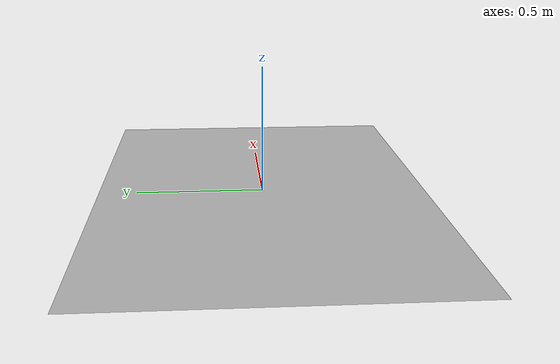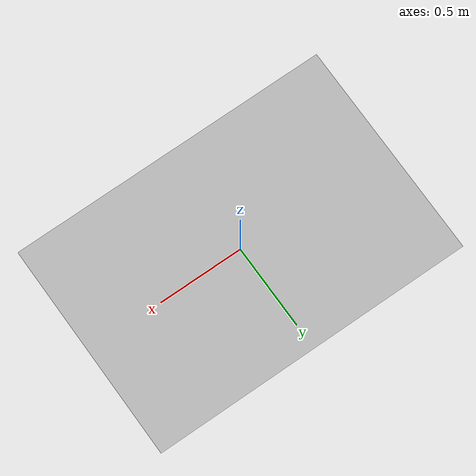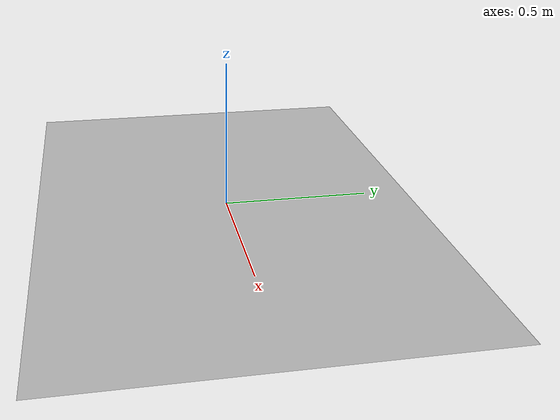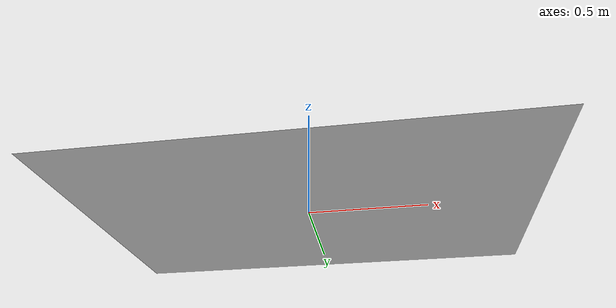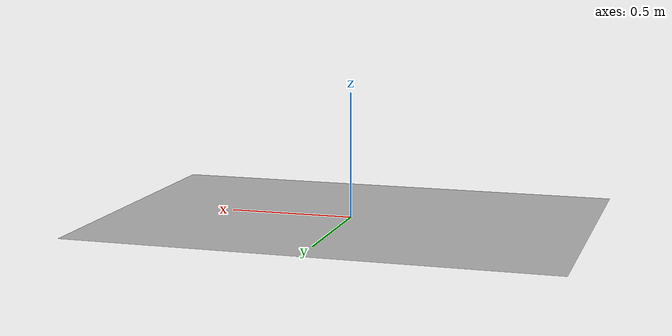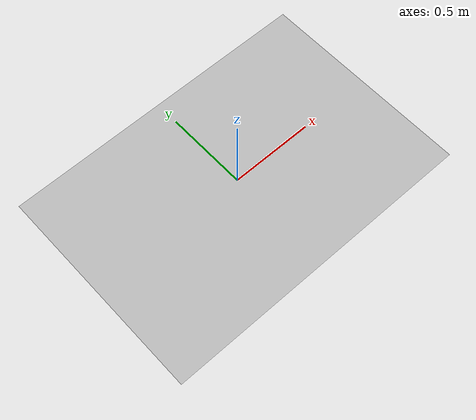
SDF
<?xml version="1.0" ?>
<sdf version="1.5">
  <model name="billboard_6">
    <static>true</static>
      <link name="billboard_6">
        <collision name="billboard-collision">
          <pose>0 0 0 0 0 0</pose>
          <geometry>
            <box>
              <size>1.9 1.3 0.00</size>
            </box>
          </geometry>
        </collision>
        <visual name="billboard-visual">
          <pose>0 0 0 0 0 0</pose>
          <geometry>
            <box>
              <size>1.9 1.3 0.00</size>
            </box>
          </geometry>
          <material>
            <script>
              <uri>model://billboard_6/materials/scripts</uri>
              <uri>model://billboard_6/materials/textures</uri>
              <name>billboard_6/Diffuse</name>
            </script>
          </material>
        </visual>
      </link>
  </model>
</sdf>
